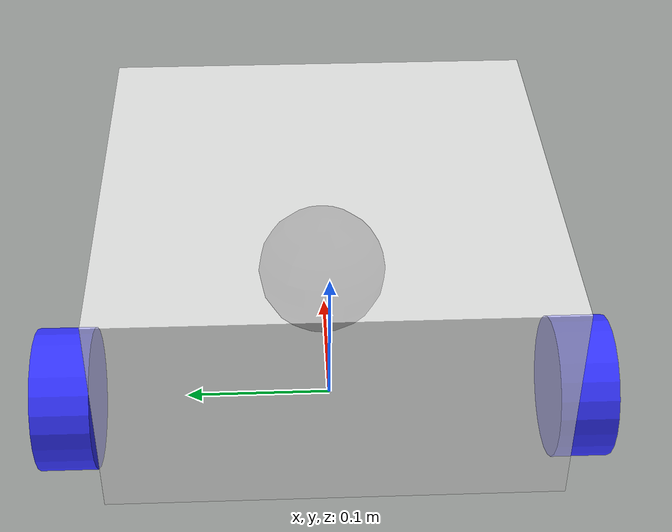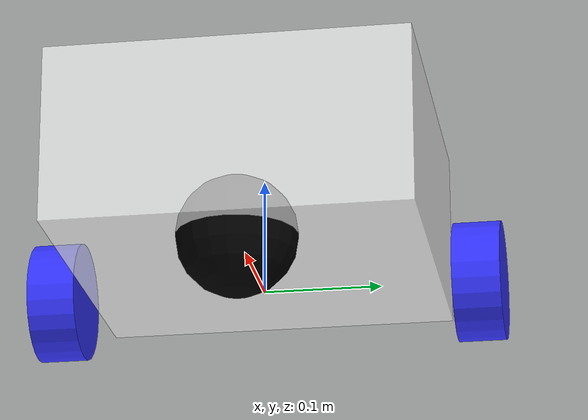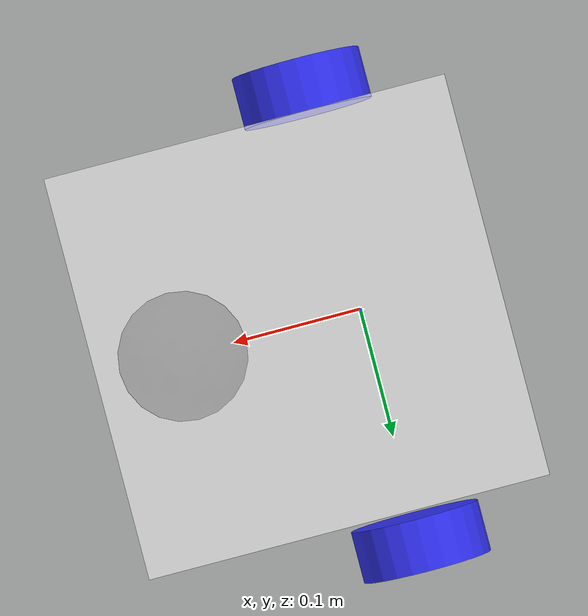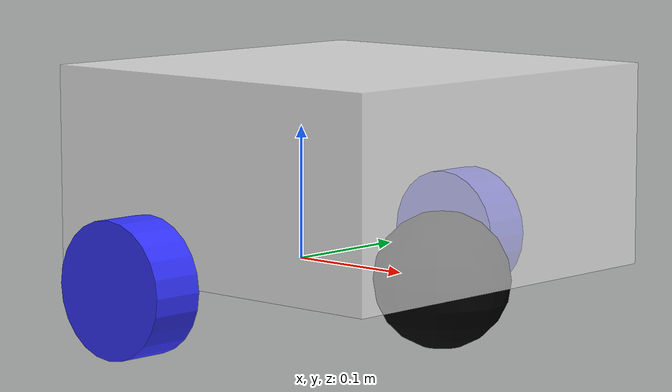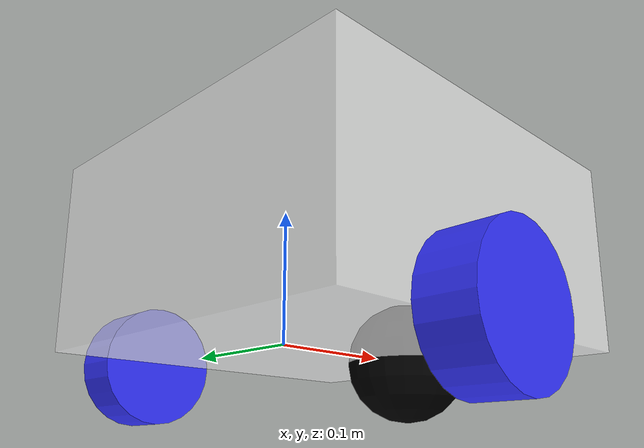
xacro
<?xml version="1.0"?>
<robot xmlns:xacro="http://www.ros.org/wiki/xacro"  name="robot">
    xacro:<xacro:include filename="inertial_macro.xacro"/>

    <material name="white">
        <color rgba="1.0 1.0 1.0 0.7"/>
    </material>

    <material name="orange">
        <color rgba="1.0 0.3 0.1 1.0"/>
    </material>

    <material name="blue">
        <color rgba="0.2 0.2 1.0 1.0"/>
    </material>

    <material name="black">
        <color rgba="0.0 0.0 0.0 1.0"/>
    </material>

    <!-- BASE LINK -->
    <link name="base_link">

    </link>
    <!-- CHASSIS LINK -->

    <joint name="chassis_joint" type="fixed">
        <parent link="base_link"/>
        <child link="chassis"/>
        <origin xyz="-0.1 0.0 0.0"/>
    </joint>

    <link name="chassis">
        <visual>
        <origin xyz="0.15 0.0 0.075"/>
            <geometry>
                <box size="0.3 0.3 0.15"/>
            </geometry>

            <material name="white"/>

        </visual>
        <collision>
            <origin xyz="0.15 0.0 0.075"/>
            <geometry>
                <box size="0.3 0.3 0.15"/>
            </geometry>
        </collision>
        <xacro:inertial_box  mass= "0.5" x= "0.3" y="0.3" z="0.15">
            <origin xyz="0.15 0.0 0.075" rpy="0.0 0.0 0.0"/>
        </xacro:inertial_box>

    </link>

    <!-- LEFT WHEEL LINK -->
    <joint name="left_wheel_joint" type="continuous">
        <parent link="base_link"/>
        <child link="left_wheel"/>
        <origin xyz="0.0 0.183 0.0" rpy="-${pi/2} 0.0 0.0"/>
        <axis xyz="0.0 0.0 1"/>
    </joint>

    <link name="left_wheel">
        <visual>
            <geometry>
                <cylinder radius="0.05" length="0.04"/>
            </geometry>

            <material name="blue"/>
        </visual>
        <collision>
            <geometry>
                <cylinder radius="0.05" length="0.04"/>
            </geometry>
        </collision>
        <xacro:inertial_cylinder mass= "0.1" length= "0.04" radius="0.05">
            <origin xyz="0.0 0.0 0.0" rpy="0.0 0.0 0.0"/>
        </xacro:inertial_cylinder>
    </link>

    <!-- RIGHT WHEEL LINK -->
    <joint name="right_wheel_joint" type="continuous">
        <parent link="base_link"/>
        <child link="right_wheel"/>
        <origin xyz="0.0 -0.175 0.0" rpy="${pi/2} 0.0 0.0"/>
        <axis xyz="0.0 0.0 -1"/>
    </joint>

    <link name="right_wheel">
        <visual>
            <geometry>
                <cylinder radius="0.05" length="0.04"/>
            </geometry>

            <material name="blue"/>
        </visual>
        <collision>
            <geometry>
                <cylinder radius="0.05" length="0.04"/>
            </geometry>
        </collision>
        <xacro:inertial_cylinder mass= "0.1" length= "0.04" radius="0.05">
            <origin xyz="0.0 0.0 0.0" rpy="0.0 0.0 0.0"/>
        </xacro:inertial_cylinder>
    </link>

    <!-- CASTER WHEEL RING -->
    <joint name="caster_wheel_joint" type="fixed">
        <parent link="chassis"/>
        <child link="caster_wheel"/>
        <origin xyz="0.24 0.0 0.0"/>
    </joint>

    <link name="caster_wheel">
        <visual>
            <geometry>
                <sphere radius="0.05"/>
            </geometry>
            <material name="black"/>
        </visual>
        <collision>
            <geometry>
                <sphere radius="0.05"/>
            </geometry>
        </collision>
        <xacro:inertial_spherer mass= "0.1" radius= "0.05">
            <origin xyz="0.0 0.0 0.0" rpy="0.0 0.0 0.0"/>
        </xacro:inertial_spherer>
    </link>

</robot>
